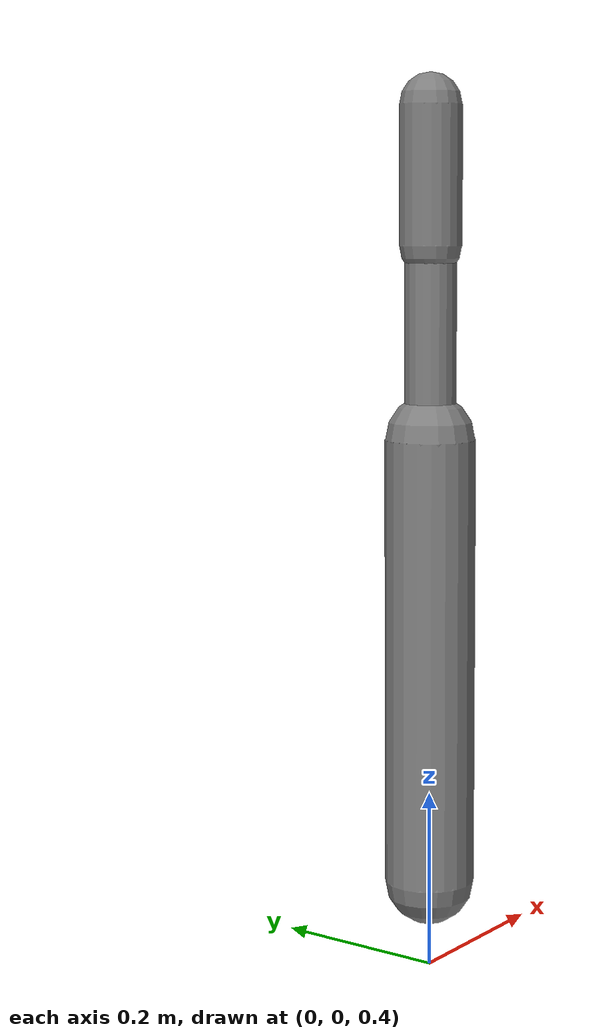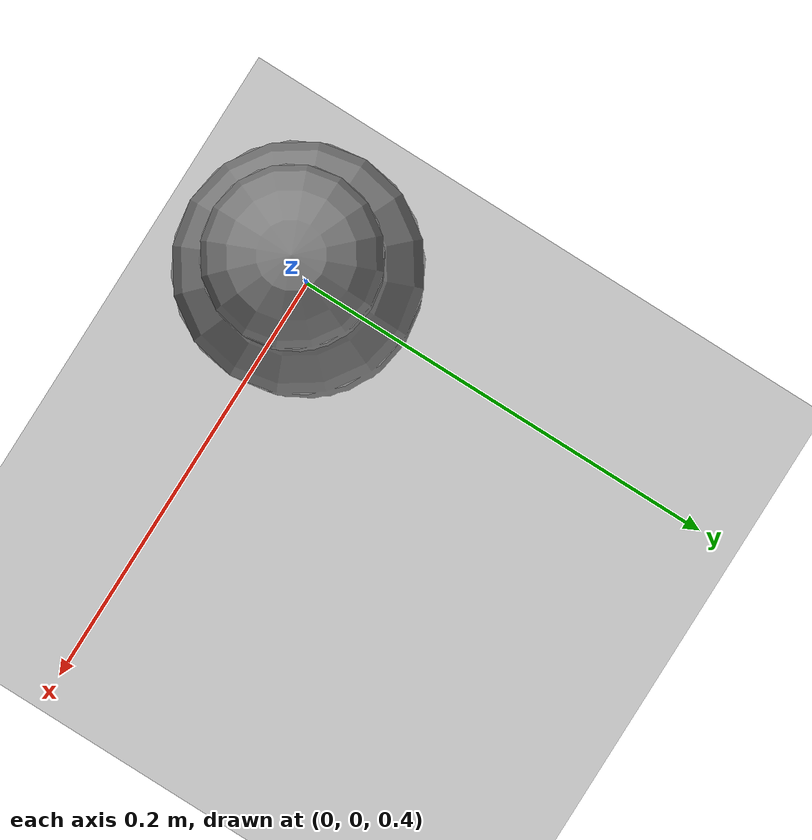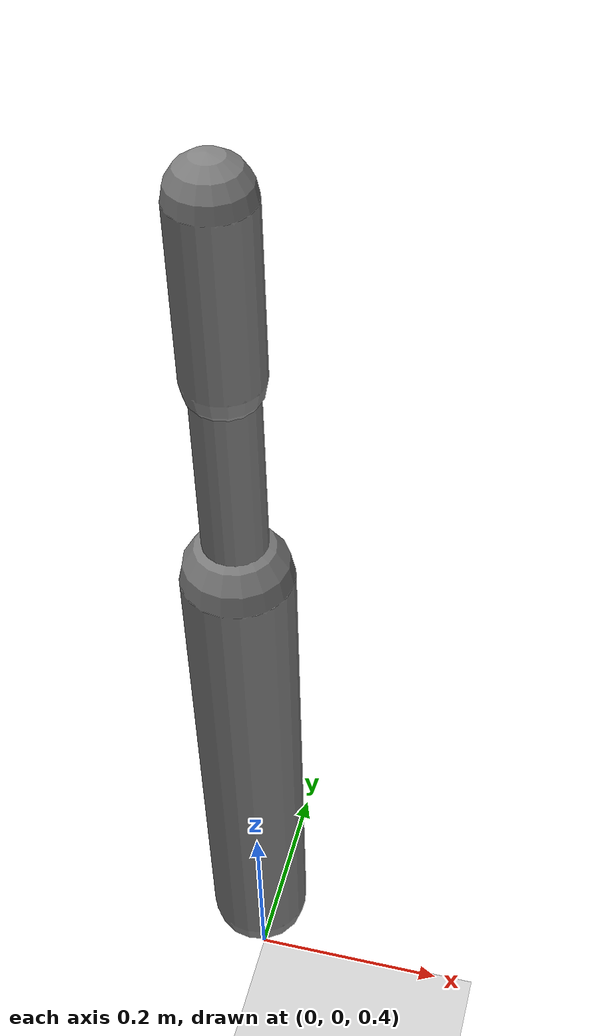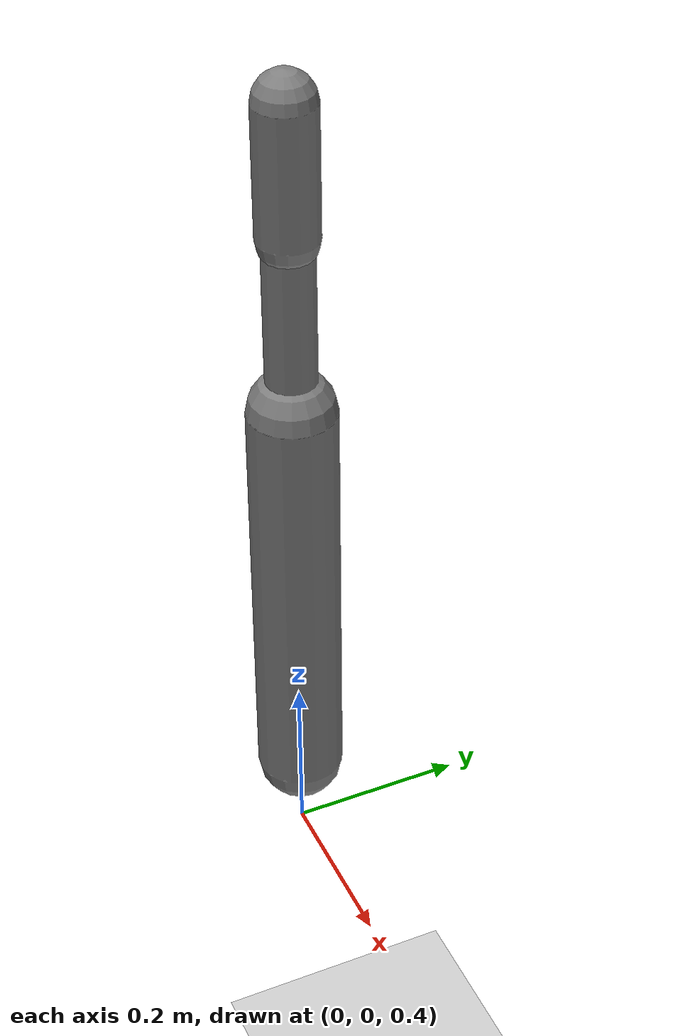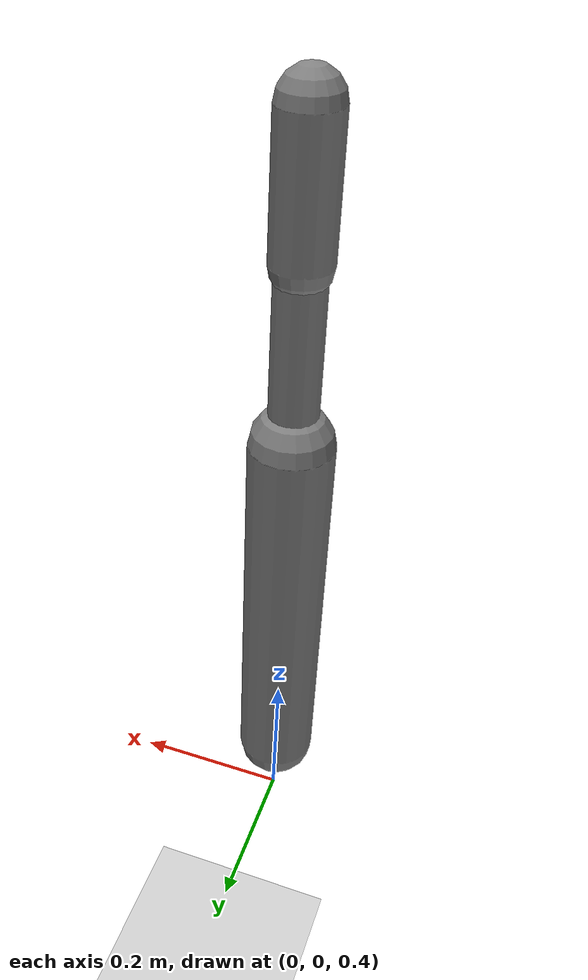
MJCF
<?xml version='1.0' encoding='UTF-8'?>
<mujoco model="RobotModel">
  <option gravity="0 0 -9.81" timestep="0.002" solver="CG" iterations="500" integrator="Euler"/>
  <worldbody>
    <geom name="Floor" type="plane" size="10 10 0.1" pos="0 0 0" rgba="0.8 0.8 0.8 1"/>
    <body name="Limb0" pos="0 0 0.5">
      <geom type="capsule" fromto="0 0 0 0 0 0.5" size="0.05" density="1000" contype="0" conaffinity="0"/>
      <body name="Limb0_bbba720a" pos="0 0 0.5">
        <geom type="capsule" fromto="0 0 0 0 0 0.20972446933013952" size="0.0284645171426973" density="800" contype="0" conaffinity="0"/>
        <body name="Limb1_bbba720a" pos="0 0 0.20972446933013952">
          <geom type="capsule" fromto="0 0 0 0 0 0.15026491618432283" size="0.034255491726933186" density="800" contype="0" conaffinity="0"/>
          <joint name="Joint_Limb0_bbba720a_Limb1_bbba720a_0" type="hinge" axis="0 1 0" range="-45 45"/>
        </body>
        <joint name="Joint_Limb0_Limb0_bbba720a_0" type="hinge" axis="1 0 0" range="-60 60"/>
      </body>
    </body>
  </worldbody>
  <actuator>
    <position name="position_Actuator_Joint_Limb0_Limb0_bbba720a_0" joint="Joint_Limb0_Limb0_bbba720a_0" gear="1.0"/>
    <position name="position_Actuator_Joint_Limb0_bbba720a_Limb1_bbba720a_0" joint="Joint_Limb0_bbba720a_Limb1_bbba720a_0" gear="1.0"/>
  </actuator>
</mujoco>
